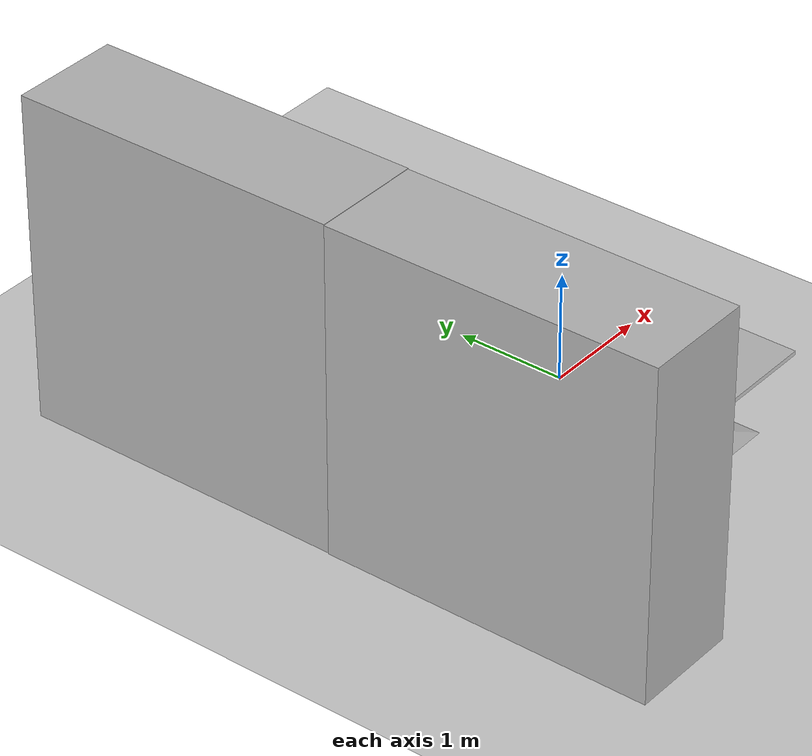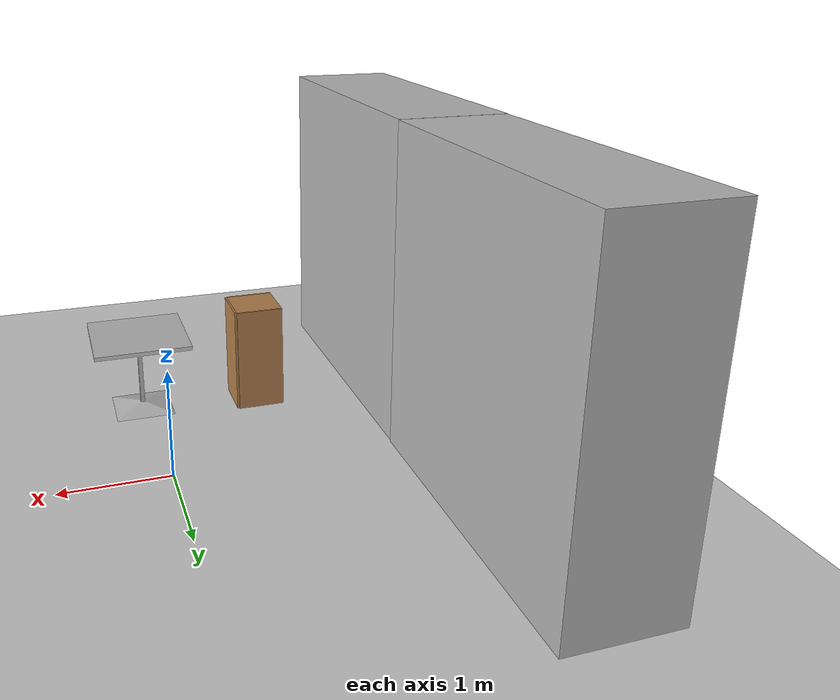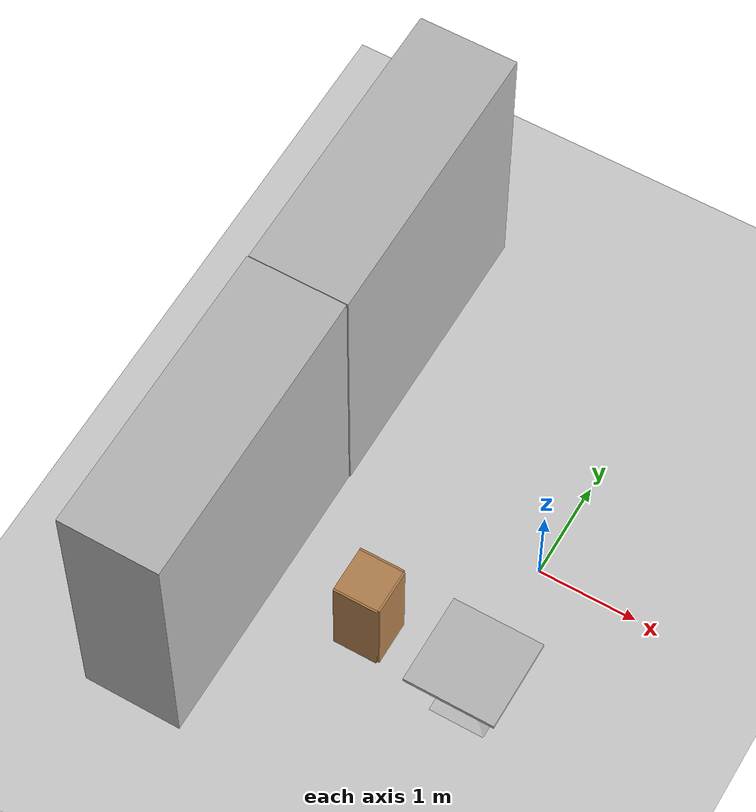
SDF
<sdf version="1.6">
 <world name="default">
  <light name="sun" type="directional">
   <pose>0 0 10 0 -0 0</pose>
   <diffuse>0.8 0.8 0.8 1</diffuse>
   <specular>0.2 0.2 0.2 1</specular>
   <attenuation>
    <range>1000</range>
    <constant>0.9</constant>
    <linear>0.01</linear>
    <quadratic>0.001</quadratic>
   </attenuation>
   <direction>-0.5 0.1 -0.9</direction>
  </light>
  <model name="ground_plane">
   <static>1</static>
   <link name="link">
    <collision name="collision">
     <geometry><plane><normal>0 0 1</normal><size>100 100</size></plane></geometry>
     <surface><friction><ode><mu>100</mu><mu2>50</mu2></ode></friction></surface>
    </collision>
    <visual name="visual">
     <cast_shadows>0</cast_shadows>
     <geometry><plane><normal>0 0 1</normal><size>100 100</size></plane></geometry>
     <material>
      <script><uri>file://media/materials/scripts/gazebo.material</uri><name>Gazebo/Grey</name></script>
     </material>
    </visual>
   </link>
  </model>
  <gravity>0 0 -9.8</gravity>
  <magnetic_field>6e-06 2.3e-05 -4.2e-05</magnetic_field>
  <atmosphere type="adiabatic"/>
  <physics name="default_physics" default="0" type="ode">
   <max_step_size>0.001</max_step_size>
   <real_time_factor>1</real_time_factor>
   <real_time_update_rate>1000</real_time_update_rate>
  </physics>
  <scene><ambient>0.4 0.4 0.4 1</ambient><background>0.7 0.7 0.7 1</background><shadows>1</shadows></scene>
  <audio><device>default</device></audio>
  <spherical_coordinates>
   <surface_model>EARTH_WGS84</surface_model>
   <latitude_deg>0</latitude_deg>
   <longitude_deg>0</longitude_deg>
   <elevation>0</elevation>
   <heading_deg>0</heading_deg>
  </spherical_coordinates>
  <model name="brick_box_3x1x3">
   <static>1</static>
   <link name="chassis">
    <pose>0 0 1.5 0 -0 0</pose>
    <collision name="collision"><geometry><box><size>3 1 3</size></box></geometry></collision>
    <visual name="visual">
     <geometry><mesh><uri>model://brick_box_3x1x3/meshes/simple_box.dae</uri><scale>3 1 3</scale></mesh></geometry>
     <material>
      <script>
       <uri>model://brick_box_3x1x3/materials/scripts</uri>
       <uri>model://brick_box_3x1x3/materials/textures</uri>
       <name>BrickBox/Diffuse</name>
      </script>
     </material>
    </visual>
   </link>
   <pose>-2.52028 1.48605 0 0 -0 1.57</pose>
  </model>
  <model name="brick_box_3x1x3_clone">
   <static>1</static>
   <link name="chassis">
    <pose>0 0 1.5 0 -0 0</pose>
    <collision name="collision"><geometry><box><size>3 1 3</size></box></geometry></collision>
    <visual name="visual">
     <geometry><mesh><uri>model://brick_box_3x1x3/meshes/simple_box.dae</uri><scale>3 1 3</scale></mesh></geometry>
     <material>
      <script>
       <uri>model://brick_box_3x1x3/materials/scripts</uri>
       <uri>model://brick_box_3x1x3/materials/textures</uri>
       <name>BrickBox/Diffuse</name>
      </script>
     </material>
    </visual>
   </link>
   <pose>-2.5324 -1.51963 0 0 -0 1.57</pose>
  </model>
  <model name="cabinet">
   <static>1</static>
   <link name="cabinet_bottom_plate">
    <inertial>
     <pose>0 0 -1 0 -0 0</pose>
     <inertia><ixx>2.05</ixx><ixy>0</ixy><ixz>0</ixz><iyy>2.05</iyy><iyz>0</iyz><izz>2.05</izz></inertia>
     <mass>25</mass>
    </inertial>
    <collision name="cabinet_bottom_plate_geom">
     <pose>0 0 0.01 0 -0 0</pose>
     <geometry><box><size>0.45 0.45 0.02</size></box></geometry>
    </collision>
    <visual name="cabinet_bottom_plate_geom_visual">
     <pose>0 0 0.01 0 -0 0</pose>
     <geometry><box><size>0.45 0.45 0.02</size></box></geometry>
     <material>
      <script><uri>file://media/materials/scripts/gazebo.material</uri><name>Gazebo/Wood</name></script>
     </material>
    </visual>
    <collision name="cabinet_bottom_plate_geom_cabinet_back_plate">
     <pose>0.235 0 0.51 0 -0 0</pose>
     <geometry><box><size>0.02 0.45 1.02</size></box></geometry>
    </collision>
    <visual name="cabinet_bottom_plate_geom_cabinet_back_plate_visual">
     <pose>0.235 0 0.51 0 -0 0</pose>
     <geometry><box><size>0.02 0.45 1.02</size></box></geometry>
     <material>
      <script><uri>file://media/materials/scripts/gazebo.material</uri><name>Gazebo/Wood</name></script>
     </material>
    </visual>
    <collision name="cabinet_bottom_plate_geom_cabinet_left_plate">
     <pose>0 0.235 0.51 0 -0 0</pose>
     <geometry><box><size>0.45 0.02 1.02</size></box></geometry>
    </collision>
    <visual name="cabinet_bottom_plate_geom_cabinet_left_plate_visual">
     <pose>0 0.235 0.51 0 -0 0</pose>
     <geometry><box><size>0.45 0.02 1.02</size></box></geometry>
     <material>
      <script><uri>file://media/materials/scripts/gazebo.material</uri><name>Gazebo/Wood</name></script>
     </material>
    </visual>
    <collision name="cabinet_bottom_plate_geom_cabinet_middle_plate">
     <pose>0 0 0.51 0 -0 0</pose>
     <geometry><box><size>0.45 0.45 0.02</size></box></geometry>
    </collision>
    <visual name="cabinet_bottom_plate_geom_cabinet_middle_plate_visual">
     <pose>0 0 0.51 0 -0 0</pose>
     <geometry><box><size>0.45 0.45 0.02</size></box></geometry>
     <material>
      <script><uri>file://media/materials/scripts/gazebo.material</uri><name>Gazebo/Wood</name></script>
     </material>
    </visual>
    <collision name="cabinet_bottom_plate_geom_cabinet_right_plate">
     <pose>0 -0.235 0.51 0 -0 0</pose>
     <geometry><box><size>0.45 0.02 1.02</size></box></geometry>
    </collision>
    <visual name="cabinet_bottom_plate_geom_cabinet_right_plate_visual">
     <pose>0 -0.235 0.51 0 -0 0</pose>
     <geometry><box><size>0.45 0.02 1.02</size></box></geometry>
     <material>
      <script><uri>file://media/materials/scripts/gazebo.material</uri><name>Gazebo/Wood</name></script>
     </material>
    </visual>
    <collision name="cabinet_bottom_plate_geom_cabinet_top_plate">
     <pose>0 0 1.01 0 -0 0</pose>
     <geometry><box><size>0.45 0.45 0.02</size></box></geometry>
    </collision>
    <visual name="cabinet_bottom_plate_geom_cabinet_top_plate_visual">
     <pose>0 0 1.01 0 -0 0</pose>
     <geometry><box><size>0.45 0.45 0.02</size></box></geometry>
     <material>
      <script><uri>file://media/materials/scripts/gazebo.material</uri><name>Gazebo/Wood</name></script>
     </material>
    </visual>
   </link>
   <pose>-1.05557 -1.3278 0 0 -0 0</pose>
  </model>
  <model name="cafe_table">
   <static>1</static>
   <link name="link">
    <collision name="surface">
     <pose>0 0 0.755 0 -0 0</pose>
     <geometry><box><size>0.913 0.913 0.04</size></box></geometry>
    </collision>
    <collision name="column">
     <pose>0 0 0.37 0 -0 0</pose>
     <geometry><box><size>0.042 0.042 0.74</size></box></geometry>
    </collision>
    <collision name="base">
     <pose>0 0 0.02 0 -0 0</pose>
     <geometry><box><size>0.56 0.56 0.04</size></box></geometry>
    </collision>
    <visual name="visual">
     <geometry><mesh><uri>model://cafe_table/meshes/cafe_table.dae</uri></mesh></geometry>
    </visual>
   </link>
   <pose>0.084681 -1.4487 0 0 -0 0</pose>
  </model>
 </world>
</sdf>
